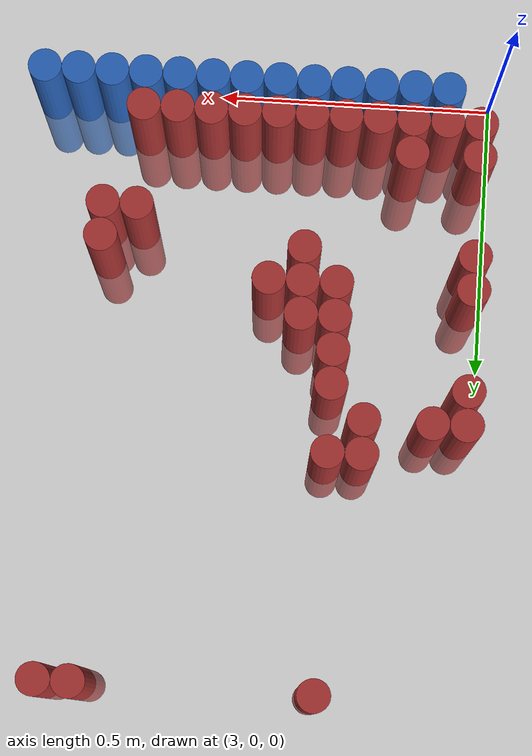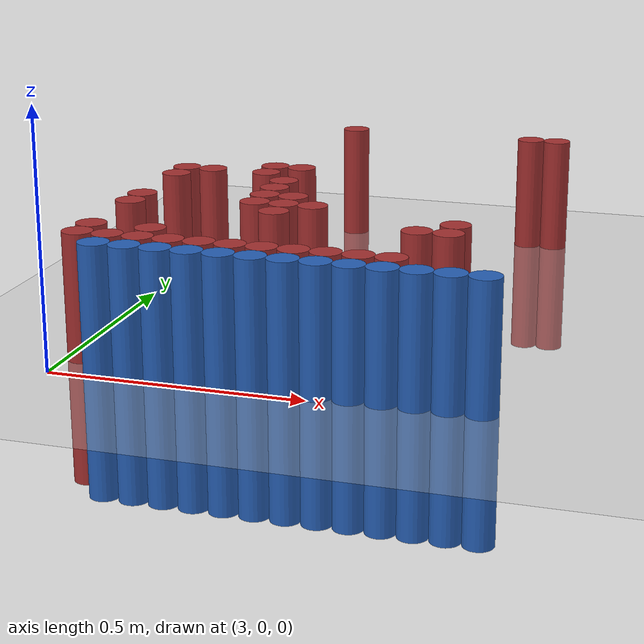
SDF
<sdf version="1.6">
 <world name="default">
  <model name="ground_plane">
   <static>1</static>
   <link name="link">
    <collision name="collision">
     <geometry><plane><normal>0 0 1</normal><size>100 100</size></plane></geometry>
     <surface><friction><ode><mu>100</mu><mu2>50</mu2></ode></friction></surface>
    </collision>
    <visual name="visual">
     <cast_shadows>0</cast_shadows>
     <geometry><plane><normal>0 0 1</normal><size>100 100</size></plane></geometry>
     <material>
      <script><uri>file://media/materials/scripts/gazebo.material</uri><name>Gazebo/Grey</name></script>
     </material>
    </visual>
   </link>
  </model>
  <model name="unit_cylinder_225">
   <static>1</static>
   <pose>3.270000 1.110000 0.000000 0.000000 0.000000 0.000000</pose>
   <link name="link">
    <inertial>
     <mass>1</mass>
     <inertia><ixx>0.145833</ixx><ixy>0</ixy><ixz>0</ixz><iyy>0.145833</iyy><iyz>0</iyz><izz>0.125</izz></inertia>
    </inertial>
    <collision name="collision">
     <geometry><cylinder><radius>0.030000</radius><length>0.5</length></cylinder></geometry>
    </collision>
    <visual name="visual">
     <geometry><cylinder><radius>0.030000</radius><length>0.5</length></cylinder></geometry>
     <material>
      <ambient>0.648000 0.192000 0.192000 1</ambient>
      <diffuse>0.648000 0.192000 0.192000 1</diffuse>
     </material>
     <material>
      <script><name>Gazebo/Grey</name><uri>file://media/materials/scripts/gazebo.material</uri></script>
     </material>
    </visual>
   </link>
  </model>
  <model name="unit_cylinder_226">
   <static>1</static>
   <pose>3.690000 1.110000 0.000000 0.000000 0.000000 0.000000</pose>
   <link name="link">
    <inertial>
     <mass>1</mass>
     <inertia><ixx>0.145833</ixx><ixy>0</ixy><ixz>0</ixz><iyy>0.145833</iyy><iyz>0</iyz><izz>0.125</izz></inertia>
    </inertial>
    <collision name="collision">
     <geometry><cylinder><radius>0.030000</radius><length>0.5</length></cylinder></geometry>
    </collision>
    <visual name="visual">
     <geometry><cylinder><radius>0.030000</radius><length>0.5</length></cylinder></geometry>
     <material>
      <ambient>0.648000 0.192000 0.192000 1</ambient>
      <diffuse>0.648000 0.192000 0.192000 1</diffuse>
     </material>
     <material>
      <script><name>Gazebo/Grey</name><uri>file://media/materials/scripts/gazebo.material</uri></script>
     </material>
    </visual>
   </link>
  </model>
  <model name="unit_cylinder_227">
   <static>1</static>
   <pose>3.750000 1.110000 0.000000 0.000000 0.000000 0.000000</pose>
   <link name="link">
    <inertial>
     <mass>1</mass>
     <inertia><ixx>0.145833</ixx><ixy>0</ixy><ixz>0</ixz><iyy>0.145833</iyy><iyz>0</iyz><izz>0.125</izz></inertia>
    </inertial>
    <collision name="collision">
     <geometry><cylinder><radius>0.030000</radius><length>0.5</length></cylinder></geometry>
    </collision>
    <visual name="visual">
     <geometry><cylinder><radius>0.030000</radius><length>0.5</length></cylinder></geometry>
     <material>
      <ambient>0.648000 0.192000 0.192000 1</ambient>
      <diffuse>0.648000 0.192000 0.192000 1</diffuse>
     </material>
     <material>
      <script><name>Gazebo/Grey</name><uri>file://media/materials/scripts/gazebo.material</uri></script>
     </material>
    </visual>
   </link>
  </model>
  <model name="unit_cylinder_228">
   <static>1</static>
   <pose>3.210000 0.690000 0.000000 0.000000 0.000000 0.000000</pose>
   <link name="link">
    <inertial>
     <mass>1</mass>
     <inertia><ixx>0.145833</ixx><ixy>0</ixy><ixz>0</ixz><iyy>0.145833</iyy><iyz>0</iyz><izz>0.125</izz></inertia>
    </inertial>
    <collision name="collision">
     <geometry><cylinder><radius>0.030000</radius><length>0.5</length></cylinder></geometry>
    </collision>
    <visual name="visual">
     <geometry><cylinder><radius>0.030000</radius><length>0.5</length></cylinder></geometry>
     <material>
      <ambient>0.648000 0.192000 0.192000 1</ambient>
      <diffuse>0.648000 0.192000 0.192000 1</diffuse>
     </material>
     <material>
      <script><name>Gazebo/Grey</name><uri>file://media/materials/scripts/gazebo.material</uri></script>
     </material>
    </visual>
   </link>
  </model>
  <model name="unit_cylinder_229">
   <static>1</static>
   <pose>3.270000 0.690000 0.000000 0.000000 0.000000 0.000000</pose>
   <link name="link">
    <inertial>
     <mass>1</mass>
     <inertia><ixx>0.145833</ixx><ixy>0</ixy><ixz>0</ixz><iyy>0.145833</iyy><iyz>0</iyz><izz>0.125</izz></inertia>
    </inertial>
    <collision name="collision">
     <geometry><cylinder><radius>0.030000</radius><length>0.5</length></cylinder></geometry>
    </collision>
    <visual name="visual">
     <geometry><cylinder><radius>0.030000</radius><length>0.5</length></cylinder></geometry>
     <material>
      <ambient>0.648000 0.192000 0.192000 1</ambient>
      <diffuse>0.648000 0.192000 0.192000 1</diffuse>
     </material>
     <material>
      <script><name>Gazebo/Grey</name><uri>file://media/materials/scripts/gazebo.material</uri></script>
     </material>
    </visual>
   </link>
  </model>
  <model name="unit_cylinder_231">
   <static>1</static>
   <pose>3.030000 0.630000 0.000000 0.000000 0.000000 0.000000</pose>
   <link name="link">
    <inertial>
     <mass>1</mass>
     <inertia><ixx>0.145833</ixx><ixy>0</ixy><ixz>0</ixz><iyy>0.145833</iyy><iyz>0</iyz><izz>0.125</izz></inertia>
    </inertial>
    <collision name="collision">
     <geometry><cylinder><radius>0.030000</radius><length>0.5</length></cylinder></geometry>
    </collision>
    <visual name="visual">
     <geometry><cylinder><radius>0.030000</radius><length>0.5</length></cylinder></geometry>
     <material>
      <ambient>0.648000 0.192000 0.192000 1</ambient>
      <diffuse>0.648000 0.192000 0.192000 1</diffuse>
     </material>
     <material>
      <script><name>Gazebo/Grey</name><uri>file://media/materials/scripts/gazebo.material</uri></script>
     </material>
    </visual>
   </link>
  </model>
  <model name="unit_cylinder_232">
   <static>1</static>
   <pose>3.090000 0.630000 0.000000 0.000000 0.000000 0.000000</pose>
   <link name="link">
    <inertial>
     <mass>1</mass>
     <inertia><ixx>0.145833</ixx><ixy>0</ixy><ixz>0</ixz><iyy>0.145833</iyy><iyz>0</iyz><izz>0.125</izz></inertia>
    </inertial>
    <collision name="collision">
     <geometry><cylinder><radius>0.030000</radius><length>0.5</length></cylinder></geometry>
    </collision>
    <visual name="visual">
     <geometry><cylinder><radius>0.030000</radius><length>0.5</length></cylinder></geometry>
     <material>
      <ambient>0.648000 0.192000 0.192000 1</ambient>
      <diffuse>0.648000 0.192000 0.192000 1</diffuse>
     </material>
     <material>
      <script><name>Gazebo/Grey</name><uri>file://media/materials/scripts/gazebo.material</uri></script>
     </material>
    </visual>
   </link>
  </model>
  <model name="unit_cylinder_233">
   <static>1</static>
   <pose>3.210000 0.630000 0.000000 0.000000 0.000000 0.000000</pose>
   <link name="link">
    <inertial>
     <mass>1</mass>
     <inertia><ixx>0.145833</ixx><ixy>0</ixy><ixz>0</ixz><iyy>0.145833</iyy><iyz>0</iyz><izz>0.125</izz></inertia>
    </inertial>
    <collision name="collision">
     <geometry><cylinder><radius>0.030000</radius><length>0.5</length></cylinder></geometry>
    </collision>
    <visual name="visual">
     <geometry><cylinder><radius>0.030000</radius><length>0.5</length></cylinder></geometry>
     <material>
      <ambient>0.648000 0.192000 0.192000 1</ambient>
      <diffuse>0.648000 0.192000 0.192000 1</diffuse>
     </material>
     <material>
      <script><name>Gazebo/Grey</name><uri>file://media/materials/scripts/gazebo.material</uri></script>
     </material>
    </visual>
   </link>
  </model>
  <model name="unit_cylinder_238">
   <static>1</static>
   <pose>3.030000 0.570000 0.000000 0.000000 0.000000 0.000000</pose>
   <link name="link">
    <inertial>
     <mass>1</mass>
     <inertia><ixx>0.145833</ixx><ixy>0</ixy><ixz>0</ixz><iyy>0.145833</iyy><iyz>0</iyz><izz>0.125</izz></inertia>
    </inertial>
    <collision name="collision">
     <geometry><cylinder><radius>0.030000</radius><length>0.5</length></cylinder></geometry>
    </collision>
    <visual name="visual">
     <geometry><cylinder><radius>0.030000</radius><length>0.5</length></cylinder></geometry>
     <material>
      <ambient>0.648000 0.192000 0.192000 1</ambient>
      <diffuse>0.648000 0.192000 0.192000 1</diffuse>
     </material>
     <material>
      <script><name>Gazebo/Grey</name><uri>file://media/materials/scripts/gazebo.material</uri></script>
     </material>
    </visual>
   </link>
  </model>
  <model name="unit_cylinder_239">
   <static>1</static>
   <pose>3.270000 0.570000 0.000000 0.000000 0.000000 0.000000</pose>
   <link name="link">
    <inertial>
     <mass>1</mass>
     <inertia><ixx>0.145833</ixx><ixy>0</ixy><ixz>0</ixz><iyy>0.145833</iyy><iyz>0</iyz><izz>0.125</izz></inertia>
    </inertial>
    <collision name="collision">
     <geometry><cylinder><radius>0.030000</radius><length>0.5</length></cylinder></geometry>
    </collision>
    <visual name="visual">
     <geometry><cylinder><radius>0.030000</radius><length>0.5</length></cylinder></geometry>
     <material>
      <ambient>0.648000 0.192000 0.192000 1</ambient>
      <diffuse>0.648000 0.192000 0.192000 1</diffuse>
     </material>
     <material>
      <script><name>Gazebo/Grey</name><uri>file://media/materials/scripts/gazebo.material</uri></script>
     </material>
    </visual>
   </link>
  </model>
  <model name="unit_cylinder_249">
   <static>1</static>
   <pose>3.270000 0.510000 0.000000 0.000000 0.000000 0.000000</pose>
   <link name="link">
    <inertial>
     <mass>1</mass>
     <inertia><ixx>0.145833</ixx><ixy>0</ixy><ixz>0</ixz><iyy>0.145833</iyy><iyz>0</iyz><izz>0.125</izz></inertia>
    </inertial>
    <collision name="collision">
     <geometry><cylinder><radius>0.030000</radius><length>0.5</length></cylinder></geometry>
    </collision>
    <visual name="visual">
     <geometry><cylinder><radius>0.030000</radius><length>0.5</length></cylinder></geometry>
     <material>
      <ambient>0.648000 0.192000 0.192000 1</ambient>
      <diffuse>0.648000 0.192000 0.192000 1</diffuse>
     </material>
     <material>
      <script><name>Gazebo/Grey</name><uri>file://media/materials/scripts/gazebo.material</uri></script>
     </material>
    </visual>
   </link>
  </model>
  <model name="unit_cylinder_253">
   <static>1</static>
   <pose>3.270000 0.450000 0.000000 0.000000 0.000000 0.000000</pose>
   <link name="link">
    <inertial>
     <mass>1</mass>
     <inertia><ixx>0.145833</ixx><ixy>0</ixy><ixz>0</ixz><iyy>0.145833</iyy><iyz>0</iyz><izz>0.125</izz></inertia>
    </inertial>
    <collision name="collision">
     <geometry><cylinder><radius>0.030000</radius><length>0.5</length></cylinder></geometry>
    </collision>
    <visual name="visual">
     <geometry><cylinder><radius>0.030000</radius><length>0.5</length></cylinder></geometry>
     <material>
      <ambient>0.648000 0.192000 0.192000 1</ambient>
      <diffuse>0.648000 0.192000 0.192000 1</diffuse>
     </material>
     <material>
      <script><name>Gazebo/Grey</name><uri>file://media/materials/scripts/gazebo.material</uri></script>
     </material>
    </visual>
   </link>
  </model>
  <model name="unit_cylinder_254">
   <static>1</static>
   <pose>3.330000 0.450000 0.000000 0.000000 0.000000 0.000000</pose>
   <link name="link">
    <inertial>
     <mass>1</mass>
     <inertia><ixx>0.145833</ixx><ixy>0</ixy><ixz>0</ixz><iyy>0.145833</iyy><iyz>0</iyz><izz>0.125</izz></inertia>
    </inertial>
    <collision name="collision">
     <geometry><cylinder><radius>0.030000</radius><length>0.5</length></cylinder></geometry>
    </collision>
    <visual name="visual">
     <geometry><cylinder><radius>0.030000</radius><length>0.5</length></cylinder></geometry>
     <material>
      <ambient>0.648000 0.192000 0.192000 1</ambient>
      <diffuse>0.648000 0.192000 0.192000 1</diffuse>
     </material>
     <material>
      <script><name>Gazebo/Grey</name><uri>file://media/materials/scripts/gazebo.material</uri></script>
     </material>
    </visual>
   </link>
  </model>
  <model name="unit_cylinder_260">
   <static>1</static>
   <pose>3.030000 0.390000 0.000000 0.000000 0.000000 0.000000</pose>
   <link name="link">
    <inertial>
     <mass>1</mass>
     <inertia><ixx>0.145833</ixx><ixy>0</ixy><ixz>0</ixz><iyy>0.145833</iyy><iyz>0</iyz><izz>0.125</izz></inertia>
    </inertial>
    <collision name="collision">
     <geometry><cylinder><radius>0.030000</radius><length>0.5</length></cylinder></geometry>
    </collision>
    <visual name="visual">
     <geometry><cylinder><radius>0.030000</radius><length>0.5</length></cylinder></geometry>
     <material>
      <ambient>0.648000 0.192000 0.192000 1</ambient>
      <diffuse>0.648000 0.192000 0.192000 1</diffuse>
     </material>
     <material>
      <script><name>Gazebo/Grey</name><uri>file://media/materials/scripts/gazebo.material</uri></script>
     </material>
    </visual>
   </link>
  </model>
  <model name="unit_cylinder_261">
   <static>1</static>
   <pose>3.270000 0.390000 0.000000 0.000000 0.000000 0.000000</pose>
   <link name="link">
    <inertial>
     <mass>1</mass>
     <inertia><ixx>0.145833</ixx><ixy>0</ixy><ixz>0</ixz><iyy>0.145833</iyy><iyz>0</iyz><izz>0.125</izz></inertia>
    </inertial>
    <collision name="collision">
     <geometry><cylinder><radius>0.030000</radius><length>0.5</length></cylinder></geometry>
    </collision>
    <visual name="visual">
     <geometry><cylinder><radius>0.030000</radius><length>0.5</length></cylinder></geometry>
     <material>
      <ambient>0.648000 0.192000 0.192000 1</ambient>
      <diffuse>0.648000 0.192000 0.192000 1</diffuse>
     </material>
     <material>
      <script><name>Gazebo/Grey</name><uri>file://media/materials/scripts/gazebo.material</uri></script>
     </material>
    </visual>
   </link>
  </model>
  <model name="unit_cylinder_262">
   <static>1</static>
   <pose>3.330000 0.390000 0.000000 0.000000 0.000000 0.000000</pose>
   <link name="link">
    <inertial>
     <mass>1</mass>
     <inertia><ixx>0.145833</ixx><ixy>0</ixy><ixz>0</ixz><iyy>0.145833</iyy><iyz>0</iyz><izz>0.125</izz></inertia>
    </inertial>
    <collision name="collision">
     <geometry><cylinder><radius>0.030000</radius><length>0.5</length></cylinder></geometry>
    </collision>
    <visual name="visual">
     <geometry><cylinder><radius>0.030000</radius><length>0.5</length></cylinder></geometry>
     <material>
      <ambient>0.648000 0.192000 0.192000 1</ambient>
      <diffuse>0.648000 0.192000 0.192000 1</diffuse>
     </material>
     <material>
      <script><name>Gazebo/Grey</name><uri>file://media/materials/scripts/gazebo.material</uri></script>
     </material>
    </visual>
   </link>
  </model>
  <model name="unit_cylinder_263">
   <static>1</static>
   <pose>3.390000 0.390000 0.000000 0.000000 0.000000 0.000000</pose>
   <link name="link">
    <inertial>
     <mass>1</mass>
     <inertia><ixx>0.145833</ixx><ixy>0</ixy><ixz>0</ixz><iyy>0.145833</iyy><iyz>0</iyz><izz>0.125</izz></inertia>
    </inertial>
    <collision name="collision">
     <geometry><cylinder><radius>0.030000</radius><length>0.5</length></cylinder></geometry>
    </collision>
    <visual name="visual">
     <geometry><cylinder><radius>0.030000</radius><length>0.5</length></cylinder></geometry>
     <material>
      <ambient>0.648000 0.192000 0.192000 1</ambient>
      <diffuse>0.648000 0.192000 0.192000 1</diffuse>
     </material>
     <material>
      <script><name>Gazebo/Grey</name><uri>file://media/materials/scripts/gazebo.material</uri></script>
     </material>
    </visual>
   </link>
  </model>
  <model name="unit_cylinder_269">
   <static>1</static>
   <pose>3.030000 0.330000 0.000000 0.000000 0.000000 0.000000</pose>
   <link name="link">
    <inertial>
     <mass>1</mass>
     <inertia><ixx>0.145833</ixx><ixy>0</ixy><ixz>0</ixz><iyy>0.145833</iyy><iyz>0</iyz><izz>0.125</izz></inertia>
    </inertial>
    <collision name="collision">
     <geometry><cylinder><radius>0.030000</radius><length>0.5</length></cylinder></geometry>
    </collision>
    <visual name="visual">
     <geometry><cylinder><radius>0.030000</radius><length>0.5</length></cylinder></geometry>
     <material>
      <ambient>0.648000 0.192000 0.192000 1</ambient>
      <diffuse>0.648000 0.192000 0.192000 1</diffuse>
     </material>
     <material>
      <script><name>Gazebo/Grey</name><uri>file://media/materials/scripts/gazebo.material</uri></script>
     </material>
    </visual>
   </link>
  </model>
  <model name="unit_cylinder_270">
   <static>1</static>
   <pose>3.330000 0.330000 0.000000 0.000000 0.000000 0.000000</pose>
   <link name="link">
    <inertial>
     <mass>1</mass>
     <inertia><ixx>0.145833</ixx><ixy>0</ixy><ixz>0</ixz><iyy>0.145833</iyy><iyz>0</iyz><izz>0.125</izz></inertia>
    </inertial>
    <collision name="collision">
     <geometry><cylinder><radius>0.030000</radius><length>0.5</length></cylinder></geometry>
    </collision>
    <visual name="visual">
     <geometry><cylinder><radius>0.030000</radius><length>0.5</length></cylinder></geometry>
     <material>
      <ambient>0.648000 0.192000 0.192000 1</ambient>
      <diffuse>0.648000 0.192000 0.192000 1</diffuse>
     </material>
     <material>
      <script><name>Gazebo/Grey</name><uri>file://media/materials/scripts/gazebo.material</uri></script>
     </material>
    </visual>
   </link>
  </model>
  <model name="unit_cylinder_271">
   <static>1</static>
   <pose>3.690000 0.330000 0.000000 0.000000 0.000000 0.000000</pose>
   <link name="link">
    <inertial>
     <mass>1</mass>
     <inertia><ixx>0.145833</ixx><ixy>0</ixy><ixz>0</ixz><iyy>0.145833</iyy><iyz>0</iyz><izz>0.125</izz></inertia>
    </inertial>
    <collision name="collision">
     <geometry><cylinder><radius>0.030000</radius><length>0.5</length></cylinder></geometry>
    </collision>
    <visual name="visual">
     <geometry><cylinder><radius>0.030000</radius><length>0.5</length></cylinder></geometry>
     <material>
      <ambient>0.648000 0.192000 0.192000 1</ambient>
      <diffuse>0.648000 0.192000 0.192000 1</diffuse>
     </material>
     <material>
      <script><name>Gazebo/Grey</name><uri>file://media/materials/scripts/gazebo.material</uri></script>
     </material>
    </visual>
   </link>
  </model>
  <model name="unit_cylinder_275">
   <static>1</static>
   <pose>3.630000 0.270000 0.000000 0.000000 0.000000 0.000000</pose>
   <link name="link">
    <inertial>
     <mass>1</mass>
     <inertia><ixx>0.145833</ixx><ixy>0</ixy><ixz>0</ixz><iyy>0.145833</iyy><iyz>0</iyz><izz>0.125</izz></inertia>
    </inertial>
    <collision name="collision">
     <geometry><cylinder><radius>0.030000</radius><length>0.5</length></cylinder></geometry>
    </collision>
    <visual name="visual">
     <geometry><cylinder><radius>0.030000</radius><length>0.5</length></cylinder></geometry>
     <material>
      <ambient>0.648000 0.192000 0.192000 1</ambient>
      <diffuse>0.648000 0.192000 0.192000 1</diffuse>
     </material>
     <material>
      <script><name>Gazebo/Grey</name><uri>file://media/materials/scripts/gazebo.material</uri></script>
     </material>
    </visual>
   </link>
  </model>
  <model name="unit_cylinder_276">
   <static>1</static>
   <pose>3.690000 0.270000 0.000000 0.000000 0.000000 0.000000</pose>
   <link name="link">
    <inertial>
     <mass>1</mass>
     <inertia><ixx>0.145833</ixx><ixy>0</ixy><ixz>0</ixz><iyy>0.145833</iyy><iyz>0</iyz><izz>0.125</izz></inertia>
    </inertial>
    <collision name="collision">
     <geometry><cylinder><radius>0.030000</radius><length>0.5</length></cylinder></geometry>
    </collision>
    <visual name="visual">
     <geometry><cylinder><radius>0.030000</radius><length>0.5</length></cylinder></geometry>
     <material>
      <ambient>0.648000 0.192000 0.192000 1</ambient>
      <diffuse>0.648000 0.192000 0.192000 1</diffuse>
     </material>
     <material>
      <script><name>Gazebo/Grey</name><uri>file://media/materials/scripts/gazebo.material</uri></script>
     </material>
    </visual>
   </link>
  </model>
  <model name="unit_cylinder_284">
   <static>1</static>
   <pose>3.030000 0.150000 0.000000 0.000000 0.000000 0.000000</pose>
   <link name="link">
    <inertial>
     <mass>1</mass>
     <inertia><ixx>0.145833</ixx><ixy>0</ixy><ixz>0</ixz><iyy>0.145833</iyy><iyz>0</iyz><izz>0.125</izz></inertia>
    </inertial>
    <collision name="collision">
     <geometry><cylinder><radius>0.030000</radius><length>0.5</length></cylinder></geometry>
    </collision>
    <visual name="visual">
     <geometry><cylinder><radius>0.030000</radius><length>0.5</length></cylinder></geometry>
     <material>
      <ambient>0.648000 0.192000 0.192000 1</ambient>
      <diffuse>0.648000 0.192000 0.192000 1</diffuse>
     </material>
     <material>
      <script><name>Gazebo/Grey</name><uri>file://media/materials/scripts/gazebo.material</uri></script>
     </material>
    </visual>
   </link>
  </model>
  <model name="unit_cylinder_285">
   <static>1</static>
   <pose>3.150000 0.150000 0.000000 0.000000 0.000000 0.000000</pose>
   <link name="link">
    <inertial>
     <mass>1</mass>
     <inertia><ixx>0.145833</ixx><ixy>0</ixy><ixz>0</ixz><iyy>0.145833</iyy><iyz>0</iyz><izz>0.125</izz></inertia>
    </inertial>
    <collision name="collision">
     <geometry><cylinder><radius>0.030000</radius><length>0.5</length></cylinder></geometry>
    </collision>
    <visual name="visual">
     <geometry><cylinder><radius>0.030000</radius><length>0.5</length></cylinder></geometry>
     <material>
      <ambient>0.648000 0.192000 0.192000 1</ambient>
      <diffuse>0.648000 0.192000 0.192000 1</diffuse>
     </material>
     <material>
      <script><name>Gazebo/Grey</name><uri>file://media/materials/scripts/gazebo.material</uri></script>
     </material>
    </visual>
   </link>
  </model>
  <model name="unit_cylinder_296">
   <static>1</static>
   <pose>3.030000 0.090000 0.000000 0.000000 0.000000 0.000000</pose>
   <link name="link">
    <inertial>
     <mass>1</mass>
     <inertia><ixx>0.145833</ixx><ixy>0</ixy><ixz>0</ixz><iyy>0.145833</iyy><iyz>0</iyz><izz>0.125</izz></inertia>
    </inertial>
    <collision name="collision">
     <geometry><cylinder><radius>0.030000</radius><length>0.5</length></cylinder></geometry>
    </collision>
    <visual name="visual">
     <geometry><cylinder><radius>0.030000</radius><length>0.5</length></cylinder></geometry>
     <material>
      <ambient>0.648000 0.192000 0.192000 1</ambient>
      <diffuse>0.648000 0.192000 0.192000 1</diffuse>
     </material>
     <material>
      <script><name>Gazebo/Grey</name><uri>file://media/materials/scripts/gazebo.material</uri></script>
     </material>
    </visual>
   </link>
  </model>
  <model name="unit_cylinder_297">
   <static>1</static>
   <pose>3.090000 0.090000 0.000000 0.000000 0.000000 0.000000</pose>
   <link name="link">
    <inertial>
     <mass>1</mass>
     <inertia><ixx>0.145833</ixx><ixy>0</ixy><ixz>0</ixz><iyy>0.145833</iyy><iyz>0</iyz><izz>0.125</izz></inertia>
    </inertial>
    <collision name="collision">
     <geometry><cylinder><radius>0.030000</radius><length>0.5</length></cylinder></geometry>
    </collision>
    <visual name="visual">
     <geometry><cylinder><radius>0.030000</radius><length>0.5</length></cylinder></geometry>
     <material>
      <ambient>0.648000 0.192000 0.192000 1</ambient>
      <diffuse>0.648000 0.192000 0.192000 1</diffuse>
     </material>
     <material>
      <script><name>Gazebo/Grey</name><uri>file://media/materials/scripts/gazebo.material</uri></script>
     </material>
    </visual>
   </link>
  </model>
  <model name="unit_cylinder_298">
   <static>1</static>
   <pose>3.150000 0.090000 0.000000 0.000000 0.000000 0.000000</pose>
   <link name="link">
    <inertial>
     <mass>1</mass>
     <inertia><ixx>0.145833</ixx><ixy>0</ixy><ixz>0</ixz><iyy>0.145833</iyy><iyz>0</iyz><izz>0.125</izz></inertia>
    </inertial>
    <collision name="collision">
     <geometry><cylinder><radius>0.030000</radius><length>0.5</length></cylinder></geometry>
    </collision>
    <visual name="visual">
     <geometry><cylinder><radius>0.030000</radius><length>0.5</length></cylinder></geometry>
     <material>
      <ambient>0.648000 0.192000 0.192000 1</ambient>
      <diffuse>0.648000 0.192000 0.192000 1</diffuse>
     </material>
     <material>
      <script><name>Gazebo/Grey</name><uri>file://media/materials/scripts/gazebo.material</uri></script>
     </material>
    </visual>
   </link>
  </model>
  <model name="unit_cylinder_299">
   <static>1</static>
   <pose>3.210000 0.090000 0.000000 0.000000 0.000000 0.000000</pose>
   <link name="link">
    <inertial>
     <mass>1</mass>
     <inertia><ixx>0.145833</ixx><ixy>0</ixy><ixz>0</ixz><iyy>0.145833</iyy><iyz>0</iyz><izz>0.125</izz></inertia>
    </inertial>
    <collision name="collision">
     <geometry><cylinder><radius>0.030000</radius><length>0.5</length></cylinder></geometry>
    </collision>
    <visual name="visual">
     <geometry><cylinder><radius>0.030000</radius><length>0.5</length></cylinder></geometry>
     <material>
      <ambient>0.648000 0.192000 0.192000 1</ambient>
      <diffuse>0.648000 0.192000 0.192000 1</diffuse>
     </material>
     <material>
      <script><name>Gazebo/Grey</name><uri>file://media/materials/scripts/gazebo.material</uri></script>
     </material>
    </visual>
   </link>
  </model>
  <model name="unit_cylinder_300">
   <static>1</static>
   <pose>3.270000 0.090000 0.000000 0.000000 0.000000 0.000000</pose>
   <link name="link">
    <inertial>
     <mass>1</mass>
     <inertia><ixx>0.145833</ixx><ixy>0</ixy><ixz>0</ixz><iyy>0.145833</iyy><iyz>0</iyz><izz>0.125</izz></inertia>
    </inertial>
    <collision name="collision">
     <geometry><cylinder><radius>0.030000</radius><length>0.5</length></cylinder></geometry>
    </collision>
    <visual name="visual">
     <geometry><cylinder><radius>0.030000</radius><length>0.5</length></cylinder></geometry>
     <material>
      <ambient>0.648000 0.192000 0.192000 1</ambient>
      <diffuse>0.648000 0.192000 0.192000 1</diffuse>
     </material>
     <material>
      <script><name>Gazebo/Grey</name><uri>file://media/materials/scripts/gazebo.material</uri></script>
     </material>
    </visual>
   </link>
  </model>
  <model name="unit_cylinder_301">
   <static>1</static>
   <pose>3.330000 0.090000 0.000000 0.000000 0.000000 0.000000</pose>
   <link name="link">
    <inertial>
     <mass>1</mass>
     <inertia><ixx>0.145833</ixx><ixy>0</ixy><ixz>0</ixz><iyy>0.145833</iyy><iyz>0</iyz><izz>0.125</izz></inertia>
    </inertial>
    <collision name="collision">
     <geometry><cylinder><radius>0.030000</radius><length>0.5</length></cylinder></geometry>
    </collision>
    <visual name="visual">
     <geometry><cylinder><radius>0.030000</radius><length>0.5</length></cylinder></geometry>
     <material>
      <ambient>0.648000 0.192000 0.192000 1</ambient>
      <diffuse>0.648000 0.192000 0.192000 1</diffuse>
     </material>
     <material>
      <script><name>Gazebo/Grey</name><uri>file://media/materials/scripts/gazebo.material</uri></script>
     </material>
    </visual>
   </link>
  </model>
  <model name="unit_cylinder_302">
   <static>1</static>
   <pose>3.390000 0.090000 0.000000 0.000000 0.000000 0.000000</pose>
   <link name="link">
    <inertial>
     <mass>1</mass>
     <inertia><ixx>0.145833</ixx><ixy>0</ixy><ixz>0</ixz><iyy>0.145833</iyy><iyz>0</iyz><izz>0.125</izz></inertia>
    </inertial>
    <collision name="collision">
     <geometry><cylinder><radius>0.030000</radius><length>0.5</length></cylinder></geometry>
    </collision>
    <visual name="visual">
     <geometry><cylinder><radius>0.030000</radius><length>0.5</length></cylinder></geometry>
     <material>
      <ambient>0.648000 0.192000 0.192000 1</ambient>
      <diffuse>0.648000 0.192000 0.192000 1</diffuse>
     </material>
     <material>
      <script><name>Gazebo/Grey</name><uri>file://media/materials/scripts/gazebo.material</uri></script>
     </material>
    </visual>
   </link>
  </model>
  <model name="unit_cylinder_303">
   <static>1</static>
   <pose>3.450000 0.090000 0.000000 0.000000 0.000000 0.000000</pose>
   <link name="link">
    <inertial>
     <mass>1</mass>
     <inertia><ixx>0.145833</ixx><ixy>0</ixy><ixz>0</ixz><iyy>0.145833</iyy><iyz>0</iyz><izz>0.125</izz></inertia>
    </inertial>
    <collision name="collision">
     <geometry><cylinder><radius>0.030000</radius><length>0.5</length></cylinder></geometry>
    </collision>
    <visual name="visual">
     <geometry><cylinder><radius>0.030000</radius><length>0.5</length></cylinder></geometry>
     <material>
      <ambient>0.648000 0.192000 0.192000 1</ambient>
      <diffuse>0.648000 0.192000 0.192000 1</diffuse>
     </material>
     <material>
      <script><name>Gazebo/Grey</name><uri>file://media/materials/scripts/gazebo.material</uri></script>
     </material>
    </visual>
   </link>
  </model>
  <model name="unit_cylinder_304">
   <static>1</static>
   <pose>3.510000 0.090000 0.000000 0.000000 0.000000 0.000000</pose>
   <link name="link">
    <inertial>
     <mass>1</mass>
     <inertia><ixx>0.145833</ixx><ixy>0</ixy><ixz>0</ixz><iyy>0.145833</iyy><iyz>0</iyz><izz>0.125</izz></inertia>
    </inertial>
    <collision name="collision">
     <geometry><cylinder><radius>0.030000</radius><length>0.5</length></cylinder></geometry>
    </collision>
    <visual name="visual">
     <geometry><cylinder><radius>0.030000</radius><length>0.5</length></cylinder></geometry>
     <material>
      <ambient>0.648000 0.192000 0.192000 1</ambient>
      <diffuse>0.648000 0.192000 0.192000 1</diffuse>
     </material>
     <material>
      <script><name>Gazebo/Grey</name><uri>file://media/materials/scripts/gazebo.material</uri></script>
     </material>
    </visual>
   </link>
  </model>
  <model name="unit_cylinder_305">
   <static>1</static>
   <pose>3.570000 0.090000 0.000000 0.000000 0.000000 0.000000</pose>
   <link name="link">
    <inertial>
     <mass>1</mass>
     <inertia><ixx>0.145833</ixx><ixy>0</ixy><ixz>0</ixz><iyy>0.145833</iyy><iyz>0</iyz><izz>0.125</izz></inertia>
    </inertial>
    <collision name="collision">
     <geometry><cylinder><radius>0.030000</radius><length>0.5</length></cylinder></geometry>
    </collision>
    <visual name="visual">
     <geometry><cylinder><radius>0.030000</radius><length>0.5</length></cylinder></geometry>
     <material>
      <ambient>0.648000 0.192000 0.192000 1</ambient>
      <diffuse>0.648000 0.192000 0.192000 1</diffuse>
     </material>
     <material>
      <script><name>Gazebo/Grey</name><uri>file://media/materials/scripts/gazebo.material</uri></script>
     </material>
    </visual>
   </link>
  </model>
  <model name="unit_cylinder_306">
   <static>1</static>
   <pose>3.630000 0.090000 0.000000 0.000000 0.000000 0.000000</pose>
   <link name="link">
    <inertial>
     <mass>1</mass>
     <inertia><ixx>0.145833</ixx><ixy>0</ixy><ixz>0</ixz><iyy>0.145833</iyy><iyz>0</iyz><izz>0.125</izz></inertia>
    </inertial>
    <collision name="collision">
     <geometry><cylinder><radius>0.030000</radius><length>0.5</length></cylinder></geometry>
    </collision>
    <visual name="visual">
     <geometry><cylinder><radius>0.030000</radius><length>0.5</length></cylinder></geometry>
     <material>
      <ambient>0.648000 0.192000 0.192000 1</ambient>
      <diffuse>0.648000 0.192000 0.192000 1</diffuse>
     </material>
     <material>
      <script><name>Gazebo/Grey</name><uri>file://media/materials/scripts/gazebo.material</uri></script>
     </material>
    </visual>
   </link>
  </model>
  <model name="unit_cylinder_324">
   <static>1</static>
   <pose>3.090000 0.030000 0.000000 0.000000 0.000000 0.000000</pose>
   <link name="link">
    <inertial>
     <mass>1</mass>
     <inertia><ixx>0.145833</ixx><ixy>0</ixy><ixz>0</ixz><iyy>0.145833</iyy><iyz>0</iyz><izz>0.125</izz></inertia>
    </inertial>
    <collision name="collision">
     <geometry><cylinder><radius>0.030000</radius><length>0.5</length></cylinder></geometry>
    </collision>
    <visual name="visual">
     <geometry><cylinder><radius>0.030000</radius><length>0.5</length></cylinder></geometry>
     <material>
      <ambient>0.152000 0.379000 0.720000 1</ambient>
      <diffuse>0.152000 0.379000 0.720000 1</diffuse>
     </material>
     <material>
      <script><name>Gazebo/Grey</name><uri>file://media/materials/scripts/gazebo.material</uri></script>
     </material>
    </visual>
   </link>
  </model>
  <model name="unit_cylinder_325">
   <static>1</static>
   <pose>3.150000 0.030000 0.000000 0.000000 0.000000 0.000000</pose>
   <link name="link">
    <inertial>
     <mass>1</mass>
     <inertia><ixx>0.145833</ixx><ixy>0</ixy><ixz>0</ixz><iyy>0.145833</iyy><iyz>0</iyz><izz>0.125</izz></inertia>
    </inertial>
    <collision name="collision">
     <geometry><cylinder><radius>0.030000</radius><length>0.5</length></cylinder></geometry>
    </collision>
    <visual name="visual">
     <geometry><cylinder><radius>0.030000</radius><length>0.5</length></cylinder></geometry>
     <material>
      <ambient>0.152000 0.379000 0.720000 1</ambient>
      <diffuse>0.152000 0.379000 0.720000 1</diffuse>
     </material>
     <material>
      <script><name>Gazebo/Grey</name><uri>file://media/materials/scripts/gazebo.material</uri></script>
     </material>
    </visual>
   </link>
  </model>
  <model name="unit_cylinder_326">
   <static>1</static>
   <pose>3.210000 0.030000 0.000000 0.000000 0.000000 0.000000</pose>
   <link name="link">
    <inertial>
     <mass>1</mass>
     <inertia><ixx>0.145833</ixx><ixy>0</ixy><ixz>0</ixz><iyy>0.145833</iyy><iyz>0</iyz><izz>0.125</izz></inertia>
    </inertial>
    <collision name="collision">
     <geometry><cylinder><radius>0.030000</radius><length>0.5</length></cylinder></geometry>
    </collision>
    <visual name="visual">
     <geometry><cylinder><radius>0.030000</radius><length>0.5</length></cylinder></geometry>
     <material>
      <ambient>0.152000 0.379000 0.720000 1</ambient>
      <diffuse>0.152000 0.379000 0.720000 1</diffuse>
     </material>
     <material>
      <script><name>Gazebo/Grey</name><uri>file://media/materials/scripts/gazebo.material</uri></script>
     </material>
    </visual>
   </link>
  </model>
  <model name="unit_cylinder_327">
   <static>1</static>
   <pose>3.270000 0.030000 0.000000 0.000000 0.000000 0.000000</pose>
   <link name="link">
    <inertial>
     <mass>1</mass>
     <inertia><ixx>0.145833</ixx><ixy>0</ixy><ixz>0</ixz><iyy>0.145833</iyy><iyz>0</iyz><izz>0.125</izz></inertia>
    </inertial>
    <collision name="collision">
     <geometry><cylinder><radius>0.030000</radius><length>0.5</length></cylinder></geometry>
    </collision>
    <visual name="visual">
     <geometry><cylinder><radius>0.030000</radius><length>0.5</length></cylinder></geometry>
     <material>
      <ambient>0.152000 0.379000 0.720000 1</ambient>
      <diffuse>0.152000 0.379000 0.720000 1</diffuse>
     </material>
     <material>
      <script><name>Gazebo/Grey</name><uri>file://media/materials/scripts/gazebo.material</uri></script>
     </material>
    </visual>
   </link>
  </model>
  <model name="unit_cylinder_328">
   <static>1</static>
   <pose>3.330000 0.030000 0.000000 0.000000 0.000000 0.000000</pose>
   <link name="link">
    <inertial>
     <mass>1</mass>
     <inertia><ixx>0.145833</ixx><ixy>0</ixy><ixz>0</ixz><iyy>0.145833</iyy><iyz>0</iyz><izz>0.125</izz></inertia>
    </inertial>
    <collision name="collision">
     <geometry><cylinder><radius>0.030000</radius><length>0.5</length></cylinder></geometry>
    </collision>
    <visual name="visual">
     <geometry><cylinder><radius>0.030000</radius><length>0.5</length></cylinder></geometry>
     <material>
      <ambient>0.152000 0.379000 0.720000 1</ambient>
      <diffuse>0.152000 0.379000 0.720000 1</diffuse>
     </material>
     <material>
      <script><name>Gazebo/Grey</name><uri>file://media/materials/scripts/gazebo.material</uri></script>
     </material>
    </visual>
   </link>
  </model>
  <model name="unit_cylinder_329">
   <static>1</static>
   <pose>3.390000 0.030000 0.000000 0.000000 0.000000 0.000000</pose>
   <link name="link">
    <inertial>
     <mass>1</mass>
     <inertia><ixx>0.145833</ixx><ixy>0</ixy><ixz>0</ixz><iyy>0.145833</iyy><iyz>0</iyz><izz>0.125</izz></inertia>
    </inertial>
    <collision name="collision">
     <geometry><cylinder><radius>0.030000</radius><length>0.5</length></cylinder></geometry>
    </collision>
    <visual name="visual">
     <geometry><cylinder><radius>0.030000</radius><length>0.5</length></cylinder></geometry>
     <material>
      <ambient>0.152000 0.379000 0.720000 1</ambient>
      <diffuse>0.152000 0.379000 0.720000 1</diffuse>
     </material>
     <material>
      <script><name>Gazebo/Grey</name><uri>file://media/materials/scripts/gazebo.material</uri></script>
     </material>
    </visual>
   </link>
  </model>
  <model name="unit_cylinder_330">
   <static>1</static>
   <pose>3.450000 0.030000 0.000000 0.000000 0.000000 0.000000</pose>
   <link name="link">
    <inertial>
     <mass>1</mass>
     <inertia><ixx>0.145833</ixx><ixy>0</ixy><ixz>0</ixz><iyy>0.145833</iyy><iyz>0</iyz><izz>0.125</izz></inertia>
    </inertial>
    <collision name="collision">
     <geometry><cylinder><radius>0.030000</radius><length>0.5</length></cylinder></geometry>
    </collision>
    <visual name="visual">
     <geometry><cylinder><radius>0.030000</radius><length>0.5</length></cylinder></geometry>
     <material>
      <ambient>0.152000 0.379000 0.720000 1</ambient>
      <diffuse>0.152000 0.379000 0.720000 1</diffuse>
     </material>
     <material>
      <script><name>Gazebo/Grey</name><uri>file://media/materials/scripts/gazebo.material</uri></script>
     </material>
    </visual>
   </link>
  </model>
  <model name="unit_cylinder_331">
   <static>1</static>
   <pose>3.510000 0.030000 0.000000 0.000000 0.000000 0.000000</pose>
   <link name="link">
    <inertial>
     <mass>1</mass>
     <inertia><ixx>0.145833</ixx><ixy>0</ixy><ixz>0</ixz><iyy>0.145833</iyy><iyz>0</iyz><izz>0.125</izz></inertia>
    </inertial>
    <collision name="collision">
     <geometry><cylinder><radius>0.030000</radius><length>0.5</length></cylinder></geometry>
    </collision>
    <visual name="visual">
     <geometry><cylinder><radius>0.030000</radius><length>0.5</length></cylinder></geometry>
     <material>
      <ambient>0.152000 0.379000 0.720000 1</ambient>
      <diffuse>0.152000 0.379000 0.720000 1</diffuse>
     </material>
     <material>
      <script><name>Gazebo/Grey</name><uri>file://media/materials/scripts/gazebo.material</uri></script>
     </material>
    </visual>
   </link>
  </model>
  <model name="unit_cylinder_332">
   <static>1</static>
   <pose>3.570000 0.030000 0.000000 0.000000 0.000000 0.000000</pose>
   <link name="link">
    <inertial>
     <mass>1</mass>
     <inertia><ixx>0.145833</ixx><ixy>0</ixy><ixz>0</ixz><iyy>0.145833</iyy><iyz>0</iyz><izz>0.125</izz></inertia>
    </inertial>
    <collision name="collision">
     <geometry><cylinder><radius>0.030000</radius><length>0.5</length></cylinder></geometry>
    </collision>
    <visual name="visual">
     <geometry><cylinder><radius>0.030000</radius><length>0.5</length></cylinder></geometry>
     <material>
      <ambient>0.152000 0.379000 0.720000 1</ambient>
      <diffuse>0.152000 0.379000 0.720000 1</diffuse>
     </material>
     <material>
      <script><name>Gazebo/Grey</name><uri>file://media/materials/scripts/gazebo.material</uri></script>
     </material>
    </visual>
   </link>
  </model>
  <model name="unit_cylinder_333">
   <static>1</static>
   <pose>3.630000 0.030000 0.000000 0.000000 0.000000 0.000000</pose>
   <link name="link">
    <inertial>
     <mass>1</mass>
     <inertia><ixx>0.145833</ixx><ixy>0</ixy><ixz>0</ixz><iyy>0.145833</iyy><iyz>0</iyz><izz>0.125</izz></inertia>
    </inertial>
    <collision name="collision">
     <geometry><cylinder><radius>0.030000</radius><length>0.5</length></cylinder></geometry>
    </collision>
    <visual name="visual">
     <geometry><cylinder><radius>0.030000</radius><length>0.5</length></cylinder></geometry>
     <material>
      <ambient>0.152000 0.379000 0.720000 1</ambient>
      <diffuse>0.152000 0.379000 0.720000 1</diffuse>
     </material>
     <material>
      <script><name>Gazebo/Grey</name><uri>file://media/materials/scripts/gazebo.material</uri></script>
     </material>
    </visual>
   </link>
  </model>
  <model name="unit_cylinder_334">
   <static>1</static>
   <pose>3.690000 0.030000 0.000000 0.000000 0.000000 0.000000</pose>
   <link name="link">
    <inertial>
     <mass>1</mass>
     <inertia><ixx>0.145833</ixx><ixy>0</ixy><ixz>0</ixz><iyy>0.145833</iyy><iyz>0</iyz><izz>0.125</izz></inertia>
    </inertial>
    <collision name="collision">
     <geometry><cylinder><radius>0.030000</radius><length>0.5</length></cylinder></geometry>
    </collision>
    <visual name="visual">
     <geometry><cylinder><radius>0.030000</radius><length>0.5</length></cylinder></geometry>
     <material>
      <ambient>0.152000 0.379000 0.720000 1</ambient>
      <diffuse>0.152000 0.379000 0.720000 1</diffuse>
     </material>
     <material>
      <script><name>Gazebo/Grey</name><uri>file://media/materials/scripts/gazebo.material</uri></script>
     </material>
    </visual>
   </link>
  </model>
  <model name="unit_cylinder_335">
   <static>1</static>
   <pose>3.750000 0.030000 0.000000 0.000000 0.000000 0.000000</pose>
   <link name="link">
    <inertial>
     <mass>1</mass>
     <inertia><ixx>0.145833</ixx><ixy>0</ixy><ixz>0</ixz><iyy>0.145833</iyy><iyz>0</iyz><izz>0.125</izz></inertia>
    </inertial>
    <collision name="collision">
     <geometry><cylinder><radius>0.030000</radius><length>0.5</length></cylinder></geometry>
    </collision>
    <visual name="visual">
     <geometry><cylinder><radius>0.030000</radius><length>0.5</length></cylinder></geometry>
     <material>
      <ambient>0.152000 0.379000 0.720000 1</ambient>
      <diffuse>0.152000 0.379000 0.720000 1</diffuse>
     </material>
     <material>
      <script><name>Gazebo/Grey</name><uri>file://media/materials/scripts/gazebo.material</uri></script>
     </material>
    </visual>
   </link>
  </model>
  <model name="unit_cylinder_336">
   <static>1</static>
   <pose>3.810000 0.030000 0.000000 0.000000 0.000000 0.000000</pose>
   <link name="link">
    <inertial>
     <mass>1</mass>
     <inertia><ixx>0.145833</ixx><ixy>0</ixy><ixz>0</ixz><iyy>0.145833</iyy><iyz>0</iyz><izz>0.125</izz></inertia>
    </inertial>
    <collision name="collision">
     <geometry><cylinder><radius>0.030000</radius><length>0.5</length></cylinder></geometry>
    </collision>
    <visual name="visual">
     <geometry><cylinder><radius>0.030000</radius><length>0.5</length></cylinder></geometry>
     <material>
      <ambient>0.152000 0.379000 0.720000 1</ambient>
      <diffuse>0.152000 0.379000 0.720000 1</diffuse>
     </material>
     <material>
      <script><name>Gazebo/Grey</name><uri>file://media/materials/scripts/gazebo.material</uri></script>
     </material>
    </visual>
   </link>
  </model>
 </world>
</sdf>
